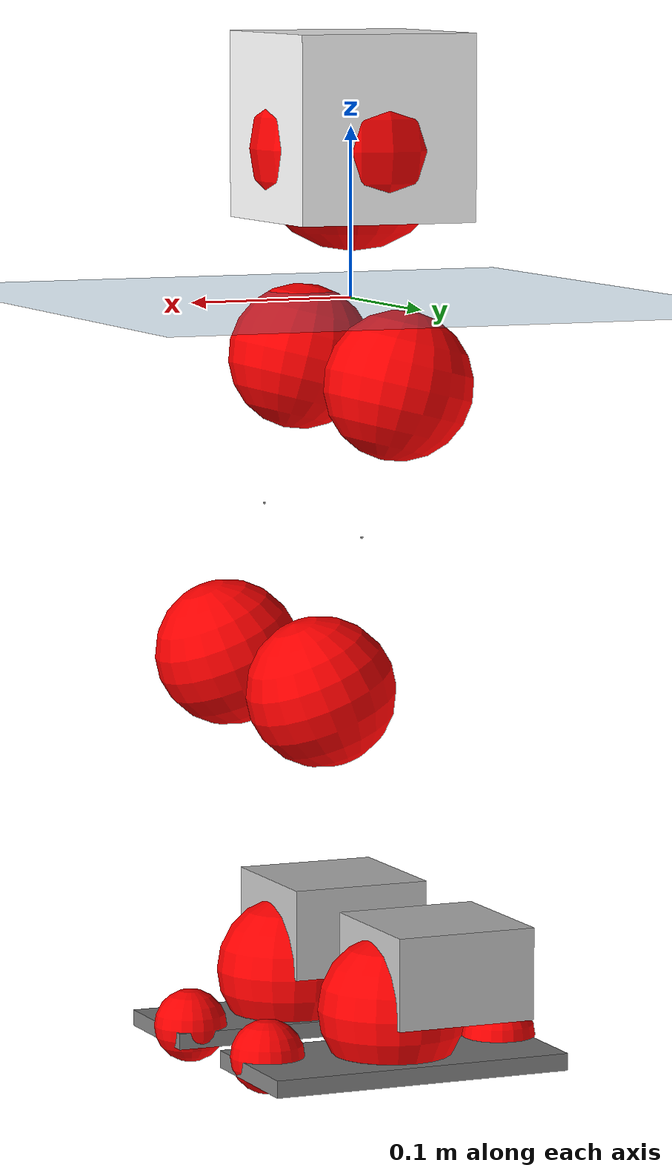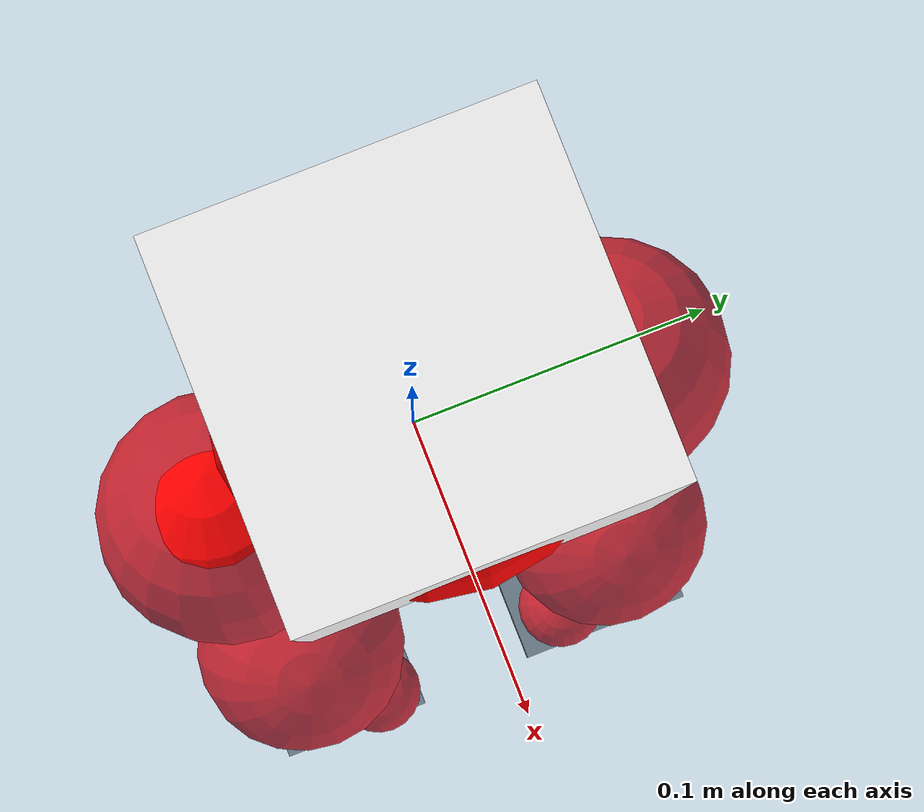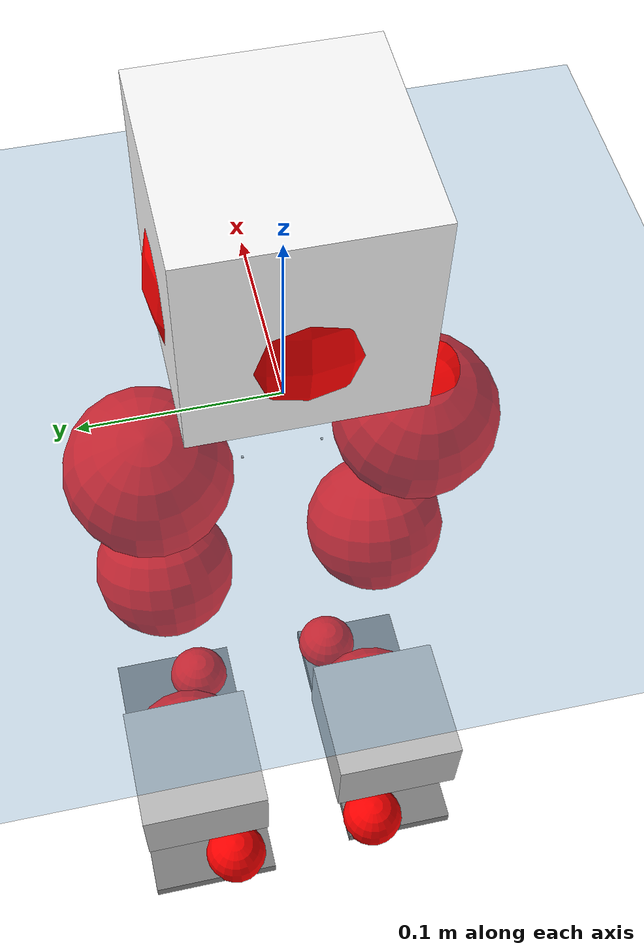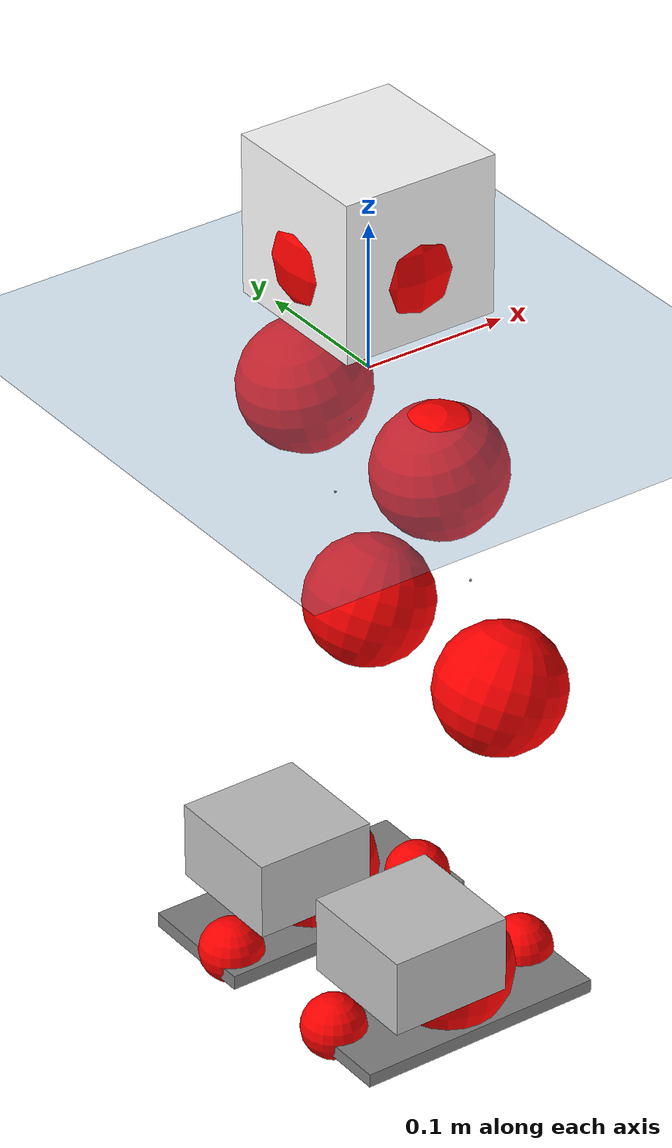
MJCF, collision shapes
<mujoco model="pi_12dof_release_v1">
  <compiler angle="radian" assetdir="assets" balanceinertia="true" inertiafromgeom="false"/>

  <option timestep="0.005" density="1.2" viscosity="2e-05"/>

  <size nkey="1"/>

  <visual>
    <quality shadowsize="8192"/>
    <map shadowclip="0.5"/>
  </visual>

  <default>
    <default class="/">
      <joint armature="0.01" damping="0.01" frictionloss="0.01"/>
      <geom contype="0" conaffinity="0" group="1" solref="-1000 -80"/>
      <site size="0.01 0.005 0.005" group="5"/>
      <general forcelimited="true" biastype="affine" gainprm="20" biasprm="0 -20 -0.5"/>
      <default class="foot">
        <geom size="0.0845 0.036 0.005" type="box" condim="6" group="4" priority="1" friction="0.9 0.2 0.2" solimp="0.015 1 0.005"/>
      </default>
      <default class="reward_collision_sphere">
        <geom group="5" rgba="1 0 0 1"/>
      </default>
    </default>
  </default>

  <asset>
    <texture type="skybox" colorspace="auto" name="//unnamed_texture_0" builtin="gradient" rgb1="0.95 0.95 0.95" rgb2="0.95 0.95 0.95" width="100" height="600"/>
    <texture type="2d" colorspace="auto" name="texplane" builtin="checker" rgb1="0.345 0.575 0.748" rgb2="0.345 0.575 0.748" markrgb="1 1 1" width="512" height="512"/>
    <material name="MatPlane" class="/" texture="texplane" texuniform="true" texrepeat="2 2" specular="0.9"/>
    <mesh name="baselink_1" class="/" file="baselink_1.STL"/>
    <mesh name="r_hip_pitch_link" class="/" file="r_hip_pitch_link.STL"/>
    <mesh name="r_hip_roll_link" class="/" file="r_hip_roll_link.STL"/>
    <mesh name="r_thigh_link" class="/" file="r_thigh_link.STL"/>
    <mesh name="r_calf_link" class="/" file="r_calf_link.STL"/>
    <mesh name="r_ankle_pitch_link" class="/" file="r_ankle_pitch_link.STL"/>
    <mesh name="r_ankle_roll_link" class="/" file="r_ankle_roll_link.STL"/>
    <mesh name="l_hip_pitch_link" class="/" file="l_hip_pitch_link.STL"/>
    <mesh name="l_hip_roll_link" class="/" file="l_hip_roll_link.STL"/>
    <mesh name="l_thigh_link" class="/" file="l_thigh_link.STL"/>
    <mesh name="l_calf_link" class="/" file="l_calf_link.STL"/>
    <mesh name="l_ankle_pitch_link" class="/" file="l_ankle_pitch_link.STL"/>
    <mesh name="l_ankle_roll_link" class="/" file="l_ankle_roll_link.STL"/>
  </asset>

  <worldbody>
    <geom name="floor" class="/" size="100 100 0.125" type="plane" group="0" material="MatPlane"/>
    <light name="toplight_shadow" class="/" pos="0 0 5" dir="0.0990148 0.0990148 -0.990148" type="directional" ambient="0.04 0.04 0.04" diffuse="0.55 0.55 0.55" specular="0.12 0.12 0.12"/>
    <light name="toplight_fill" class="/" pos="0 0 5" dir="0.0990148 0.0990148 -0.990148" type="directional" castshadow="false" ambient="0.04 0.04 0.04" diffuse="0.3 0.3 0.3" specular="0.08 0.08 0.08"/>
    <body name="trunk" pos="-8.16092e-05 0.000982709 -0.00278701" quat="1 -0.000411113 -0.000123999 -4.59095e-05">
      <inertial pos="0.00220567 0.00224965 0.0520889" quat="0.694361 0.010171 0.00739492 0.719517" mass="2.89234" diaginertia="0.0158053 0.00501794 0.0157562"/>
      <joint name="//unnamed_joint_0" type="free"/>
      <geom name="//unnamed_geom_1" class="/" type="mesh" density="0" rgba="1 1 1 1" mesh="baselink_1"/>
      <geom name="//unnamed_geom_2" class="/" size="0.0544471 0.0544471 0.0544471" pos="0 0 0.103151" type="box" rgba="1 1 1 1"/>
      <geom name="//unnamed_geom_3" class="reward_collision_sphere" size="0.0598918" pos="0 0 0.0902575"/>
      <site name="imu" class="/" pos="0.00446221 0.0141264 0.00564003" size="0.0108894"/>
      <camera name="track" class="/" pos="0 -1.76804 0" quat="0.707107 0.707107 0 0" mode="trackcom"/>
      <camera name="ego_camera" class="/" pos="0.0820059 0 0.232091" quat="-0.5 -0.5 0.5 0.5"/>
      <body name="r_hip_pitch_link" pos="1.2021e-05 -0.0212547 -0.0398582" quat="0.992042 -0.000643114 -0.125906 -6.79022e-05">
        <inertial pos="0.00224832 -0.0515508 0.000241309" quat="-0.0159386 0.707121 -0.0289541 0.706319" mass="0.467016" diaginertia="0.000171488 5.55108e-05 0.000296934"/>
        <joint name="r_hip_pitch_joint" class="/" pos="0 0 0" axis="-0.014869 -0.999883 0.0035661" range="-1.80639 1.24948" armature="0.00979284" damping="0.020961" frictionloss="0.0121484"/>
        <geom name="//unnamed_geom_4" class="/" type="mesh" density="0" rgba="0.75294 0.75294 0.75294 1" mesh="r_hip_pitch_link"/>
        <geom name="//unnamed_geom_5" class="/" size="0.000544471 0.000544471 0.000544471" type="box" rgba="0.75294 0.75294 0.75294 1"/>
        <body name="r_hip_roll_link" pos="0.00321933 -0.0496706 0.00236688" quat="1 -5.15662e-05 -0.00045836 -0.000768576">
          <inertial pos="0.000718287 -0.00250904 -0.0794275" quat="0.706475 -0.0790035 -0.0821642 0.698499" mass="0.493147" diaginertia="0.000524776 0.000143997 0.000442205"/>
          <joint name="r_hip_roll_joint" class="/" pos="0 0 0" axis="-0.99994 -0.0107236 -0.00224439" range="-0.150525 0.449262" armature="0.00952627" damping="0.00803799" frictionloss="0.0118527"/>
          <geom name="//unnamed_geom_6" class="/" type="mesh" density="0" rgba="0.75294 0.75294 0.75294 1" mesh="r_hip_roll_link"/>
          <geom name="//unnamed_geom_7" class="/" size="0.000544471 0.000544471 0.000544471" type="box" rgba="0.75294 0.75294 0.75294 1"/>
          <geom name="//unnamed_geom_8" class="reward_collision_sphere" size="0.0435577"/>
          <body name="r_thigh_link" pos="0.000742137 -0.000917913 -0.0903079" quat="0.999999 0.000456315 0.00123233 0.000242545">
            <inertial pos="-0.00175198 0.000689549 -0.0586485" quat="0.729462 0.684 -0.0053105 0.000785154" mass="0.145243" diaginertia="0.000187729 5.25952e-05 0.000210526"/>
            <joint name="r_thigh_joint" class="/" pos="0 0 0" axis="-0.00102366 -0.00521781 -0.999986" range="-0.342323 0.650011" armature="0.00950163" damping="0.0109383" frictionloss="0.0109664"/>
            <geom name="//unnamed_geom_9" class="/" type="mesh" density="0" rgba="0.75294 0.75294 0.75294 1" mesh="r_thigh_link"/>
            <geom name="//unnamed_geom_10" class="/" size="0.000544471 0.000544471 0.000544471" type="box" rgba="0.75294 0.75294 0.75294 1"/>
            <body name="r_calf_link" pos="0.00103882 2.21288e-05 -0.0916145" quat="0.947695 0.000801648 0.319177 0.000593474">
              <inertial pos="0.00230327 -0.00236451 -0.0900264" quat="0.999915 -0.00921212 -0.00554432 0.00742274" mass="1.04831" diaginertia="0.00515957 0.00182611 0.000580208"/>
              <joint name="r_calf_joint" class="/" pos="0 0 0" axis="0.0090474 -0.999944 -0.00553173" range="-1.64489 0.659126" armature="0.0106881" damping="0.0123501" frictionloss="0.0120931"/>
              <geom name="//unnamed_geom_11" class="/" type="mesh" density="0" rgba="0.75294 0.75294 0.75294 1" mesh="r_calf_link"/>
              <geom name="//unnamed_geom_12" class="/" size="0.000544471 0.000544471 0.000544471" type="box" rgba="0.75294 0.75294 0.75294 1"/>
              <geom name="//unnamed_geom_13" class="reward_collision_sphere" size="0.0435577"/>
              <body name="r_ankle_pitch_link" pos="0.00163754 -0.00054115 -0.180627" quat="0.980138 -0.000142059 -0.198319 0.000203505">
                <inertial pos="0.00802221 0.000952 0.000549866" quat="-0.00101798 0.700132 0.00604492 0.713987" mass="0.226653" diaginertia="0.000468676 0.000112463 0.000421093"/>
                <joint name="r_ankle_pitch_joint" class="/" pos="0 0 0" axis="0.00135051 -0.999995 0.0029727" range="-1.24221 0.491895" armature="0.0103914" damping="0" frictionloss="0.0124185"/>
                <geom name="//unnamed_geom_14" class="/" type="mesh" density="0" rgba="0.75294 0.75294 0.75294 1" mesh="r_ankle_pitch_link"/>
                <geom name="//unnamed_geom_15" class="/" size="0.0424687 0.0435577 0.0272235" type="box" rgba="0.75294 0.75294 0.75294 1"/>
                <body name="r_ankle_roll_link" pos="0.0837653 -6.318e-05 -0.00243199" quat="1 4.31625e-05 -7.0686e-05 0.000326219">
                  <inertial pos="-0.02624 -0.0010549 -0.0186846" quat="0.556525 0.428321 0.43496 0.563588" mass="0.6757" diaginertia="0.0017654 0.000556057 0.00097608"/>
                  <joint name="r_ankle_roll_joint" class="/" pos="0 0 0" axis="-0.999998 -0.00167002 0.00128576" stiffness="0.00995764" range="-0.168541 0.128766" armature="0.0114536" damping="0.00652721" frictionloss="0.0107924"/>
                  <geom name="//unnamed_geom_16" class="/" type="mesh" density="0" rgba="0.75294 0.75294 0.75294 1" mesh="r_ankle_roll_link"/>
                  <geom name="//unnamed_geom_17" class="/" type="mesh" rgba="0.75294 0.75294 0.75294 1" mesh="r_ankle_roll_link"/>
                  <geom name="right_foot" class="foot" size="0.0871228 0.0377617 0.00480094" pos="-0.055764 0 -0.0567333"/>
                  <geom name="//unnamed_geom_19" class="reward_collision_sphere" size="0.0435577" pos="-0.0546706 0 -0.0257879"/>
                  <geom name="//unnamed_geom_20" class="reward_collision_sphere" size="0.0217788" pos="0.0164012 0.0176804 -0.0515757"/>
                  <geom name="//unnamed_geom_21" class="reward_collision_sphere" size="0.0217788" pos="-0.131209 0.0176804 -0.0515757"/>
                  <site name="right_foot" class="foot" pos="-0.055764 0 -0.0567333" size="0.0108894"/>
                </body>
              </body>
            </body>
          </body>
        </body>
      </body>
      <body name="l_hip_pitch_link" pos="0.000587897 0.020159 -0.0442188" quat="0.992243 -0.000377424 -0.124312 0.000313105">
        <inertial pos="0.00343306 0.0484114 -0.00261685" quat="-0.0401448 0.705717 0.0289531 0.706762" mass="0.513463" diaginertia="0.000200806 5.79127e-05 0.000367966"/>
        <joint name="l_hip_pitch_joint" class="/" pos="0 0 0" axis="0.000287822 0.999999 0.0014163" range="-1.19975 1.76128" armature="0.0108351" damping="0.026762" frictionloss="0.0111257"/>
        <geom name="//unnamed_geom_22" class="/" type="mesh" density="0" rgba="0.75294 0.75294 0.75294 1" mesh="l_hip_pitch_link"/>
        <geom name="//unnamed_geom_23" class="/" size="0.000544471 0.000544471 0.000544471" type="box" rgba="0.75294 0.75294 0.75294 1"/>
        <body name="l_hip_roll_link" pos="0.000337353 0.048436 0.0016102" quat="1 -0.000158526 6.74431e-05 -7.34802e-05">
          <inertial pos="-0.00143233 0.000151323 -0.0782047" quat="0.693918 -0.0768139 -0.0875552 0.710572" mass="0.515188" diaginertia="0.000524976 0.000153489 0.000482871"/>
          <joint name="l_hip_roll_joint" class="/" pos="0 0 0" axis="-0.999907 0.0132103 -0.00339676" stiffness="0.00767793" range="-0.493431 0.158279" armature="0.00950636" damping="0.00931801" frictionloss="0.00963698"/>
          <geom name="//unnamed_geom_24" class="/" type="mesh" density="0" rgba="0.75294 0.75294 0.75294 1" mesh="l_hip_roll_link"/>
          <geom name="//unnamed_geom_25" class="/" size="0.000544471 0.000544471 0.000544471" type="box" rgba="0.75294 0.75294 0.75294 1"/>
          <geom name="//unnamed_geom_26" class="reward_collision_sphere" size="0.0435577"/>
          <body name="l_thigh_link" pos="0.000673626 -0.000633688 -0.0895488" quat="1 0.00035683 0.000196146 0.000182171">
            <inertial pos="-0.00185735 -0.00109962 -0.061662" quat="0.67979 0.733296 -0.00398131 -0.0121464" mass="0.149727" diaginertia="0.000193601 5.18414e-05 0.000211808"/>
            <joint name="l_thigh_joint" class="/" pos="0 0 0" axis="0.00186573 -0.0131829 -0.999911" stiffness="0.0109518" range="-0.618034 0.348675" armature="0.0122762" damping="0" frictionloss="0.0124293"/>
            <geom name="//unnamed_geom_27" class="/" type="mesh" density="0" rgba="0.75294 0.75294 0.75294 1" mesh="l_thigh_link"/>
            <geom name="//unnamed_geom_28" class="/" size="0.000544471 0.000544471 0.000544471" type="box" rgba="0.75294 0.75294 0.75294 1"/>
            <body name="l_calf_link" pos="0.00173017 -0.0026228 -0.0914619" quat="0.947688 3.65937e-05 0.319198 0.000252995">
              <inertial pos="0.000779351 0.00517918 -0.0902047" quat="0.999908 0.0119034 -0.00629037 -0.00158189" mass="1.05238" diaginertia="0.00556268 0.00192053 0.000632051"/>
              <joint name="l_calf_joint" class="/" pos="0 0 0" axis="0.00744629 0.999927 0.00955688" range="-0.646203 1.59701" armature="0.0118468" damping="0.00563911" frictionloss="0.00999257"/>
              <geom name="//unnamed_geom_29" class="/" type="mesh" density="0" rgba="0.75294 0.75294 0.75294 1" mesh="l_calf_link"/>
              <geom name="//unnamed_geom_30" class="/" size="0.000544471 0.000544471 0.000544471" type="box" rgba="0.75294 0.75294 0.75294 1"/>
              <geom name="//unnamed_geom_31" class="reward_collision_sphere" size="0.0435577"/>
              <body name="l_ankle_pitch_link" pos="-0.00158953 0.00223339 -0.180531" quat="0.980033 -9.95399e-06 -0.198834 8.47577e-06">
                <inertial pos="0.00544054 -0.000272964 0.000258281" quat="-0.00239587 0.706956 0.00200457 0.70725" mass="0.223013" diaginertia="0.000480076 0.000123898 0.000430419"/>
                <joint name="l_ankle_pitch_joint" class="/" pos="0 0 0" axis="-0.00198988 0.999986 -0.00483985" range="-0.50253 1.28629" armature="0.0109989" damping="0" frictionloss="0.0123702"/>
                <geom name="//unnamed_geom_32" class="/" type="mesh" density="0" rgba="0.75294 0.75294 0.75294 1" mesh="l_ankle_pitch_link"/>
                <geom name="//unnamed_geom_33" class="/" size="0.0424687 0.0435577 0.0272235" type="box" rgba="0.75294 0.75294 0.75294 1"/>
                <body name="l_ankle_roll_link" pos="0.0826201 -0.000180873 0.00290877" quat="1 -4.58496e-05 -0.000158521 -0.00051692">
                  <inertial pos="-0.0286914 -0.00107369 -0.017683" quat="0.552213 0.440623 0.439193 0.554997" mass="0.674294" diaginertia="0.00181349 0.000549073 0.00102756"/>
                  <joint name="l_ankle_roll_joint" class="/" pos="0 0 0" axis="-0.999997 0.00126488 -0.00226755" range="-0.160934 0.20926" armature="0.00969787" damping="0.0212953" frictionloss="0.00948274"/>
                  <geom name="//unnamed_geom_34" class="/" type="mesh" density="0" rgba="0.75294 0.75294 0.75294 1" mesh="l_ankle_roll_link"/>
                  <geom name="//unnamed_geom_35" class="/" type="mesh" rgba="0.75294 0.75294 0.75294 1" mesh="l_ankle_roll_link"/>
                  <geom name="left_foot" class="foot" size="0.0914033 0.0435049 0.0050787" pos="-0.055764 0 -0.0567333"/>
                  <geom name="//unnamed_geom_37" class="reward_collision_sphere" size="0.0435577" pos="-0.0546706 0 -0.0257879"/>
                  <geom name="//unnamed_geom_38" class="reward_collision_sphere" size="0.0217788" pos="0.0164012 -0.0176804 -0.0515757"/>
                  <geom name="//unnamed_geom_39" class="reward_collision_sphere" size="0.0217788" pos="-0.131209 -0.0176804 -0.0515757"/>
                  <site name="left_foot" class="foot" pos="-0.055764 0 -0.0567333" size="0.0108894"/>
                </body>
              </body>
            </body>
          </body>
        </body>
      </body>
    </body>
  </worldbody>

  <contact>
    <pair class="/" geom1="floor" geom2="right_foot" name="//unnamed_contact_1"/>
    <pair class="/" geom1="floor" geom2="left_foot" name="//unnamed_contact_0"/>
  </contact>

  <actuator>
    <general name="r_hip_pitch_joint" class="/" joint="r_hip_pitch_joint" forcerange="-23.3338 23.3338" gainprm="21.2384" biasprm="0 -21.2384 -0.585587"/>
    <general name="r_hip_roll_joint" class="/" joint="r_hip_roll_joint" forcerange="-25.2677 25.2677" gainprm="21.2384" biasprm="0 -21.2384 -0.585587"/>
    <general name="r_thigh_joint" class="/" joint="r_thigh_joint" forcerange="-22.7856 22.7856" gainprm="21.2384" biasprm="0 -21.2384 -0.585587"/>
    <general name="r_calf_joint" class="/" joint="r_calf_joint" forcerange="-22.9745 22.9745" gainprm="21.2384" biasprm="0 -21.2384 -0.585587"/>
    <general name="r_ankle_pitch_joint" class="/" joint="r_ankle_pitch_joint" forcerange="-23.3881 23.3881" gainprm="21.2384" biasprm="0 -21.2384 -0.585587"/>
    <general name="r_ankle_roll_joint" class="/" joint="r_ankle_roll_joint" forcerange="-21.9171 21.9171" gainprm="21.2384" biasprm="0 -21.2384 -0.585587"/>
    <general name="l_hip_pitch_joint" class="/" joint="l_hip_pitch_joint" forcerange="-23.2761 23.2761" gainprm="21.2384" biasprm="0 -21.2384 -0.585587"/>
    <general name="l_hip_roll_joint" class="/" joint="l_hip_roll_joint" forcerange="-20.4901 20.4901" gainprm="21.2384" biasprm="0 -21.2384 -0.585587"/>
    <general name="l_thigh_joint" class="/" joint="l_thigh_joint" forcerange="-23.1795 23.1795" gainprm="21.2384" biasprm="0 -21.2384 -0.585587"/>
    <general name="l_calf_joint" class="/" joint="l_calf_joint" forcerange="-23.589 23.589" gainprm="21.2384" biasprm="0 -21.2384 -0.585587"/>
    <general name="l_ankle_pitch_joint" class="/" joint="l_ankle_pitch_joint" forcerange="-25.2634 25.2634" gainprm="21.2384" biasprm="0 -21.2384 -0.585587"/>
    <general name="l_ankle_roll_joint" class="/" joint="l_ankle_roll_joint" forcerange="-22.8872 22.8872" gainprm="21.2384" biasprm="0 -21.2384 -0.585587"/>
  </actuator>

  <sensor>
    <gyro site="imu" name="imu_angular_velocity"/>
    <velocimeter site="imu" name="imu_linear_velocity"/>
    <framelinvel objtype="site" objname="left_foot" name="left_foot_global_linear_velocity"/>
    <framelinvel objtype="site" objname="right_foot" name="right_foot_global_linear_velocity"/>
  </sensor>

  <keyframe>
    <key name="home" qpos="0 0 0.291 1 0 0 0 0.4 0 0 -0.8 0.4 0 -0.4 0 0 0.8 -0.4 0"/>
  </keyframe>
</mujoco>
